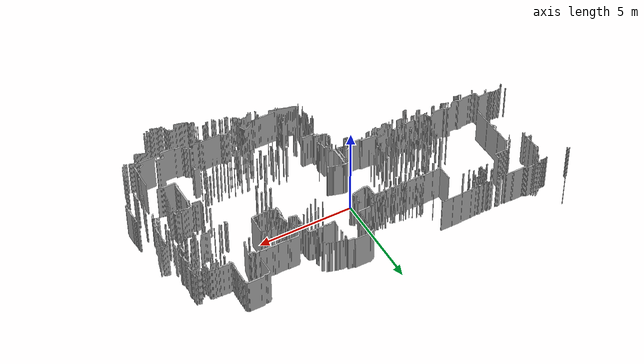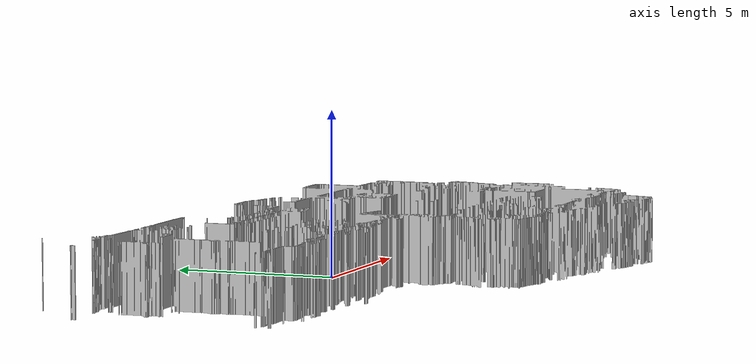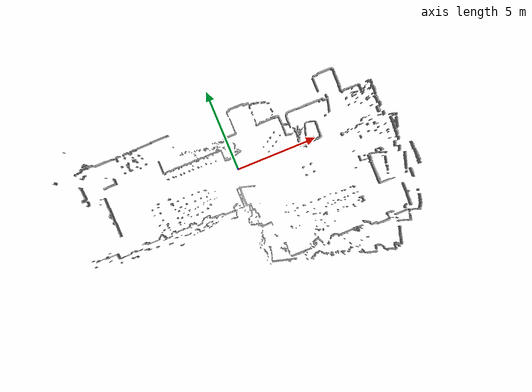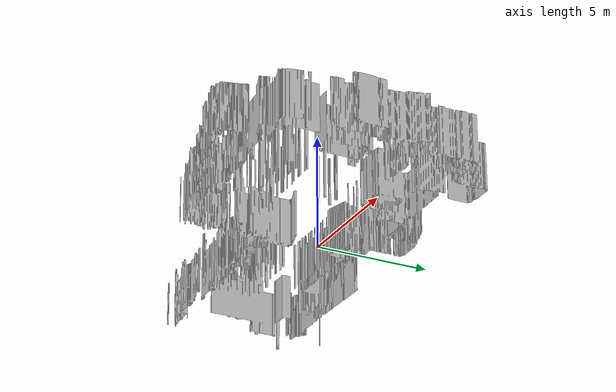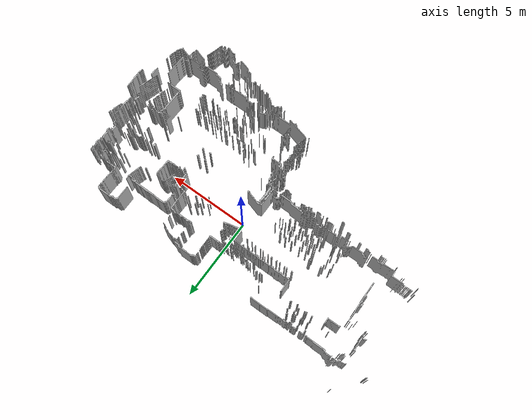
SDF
<?xml version="1.0" ?>
<sdf version="1.6">
  <model name="biestheuvel/walls">
    <static>true</static>
    <link name="1">
      <collision name="1">
        <geometry>
          <mesh>
            <uri>model://biestheuvel/walls/shape/heightmap.stl</uri>
          </mesh>
        </geometry>
      </collision>
      <visual name="1">
        <geometry>
          <mesh>
            <uri>model://biestheuvel/walls/shape/heightmap.stl</uri>
          </mesh>
        </geometry>
      </visual>
      <pose>0 0 0 0 0 0</pose>
    </link>
  </model>
</sdf>
